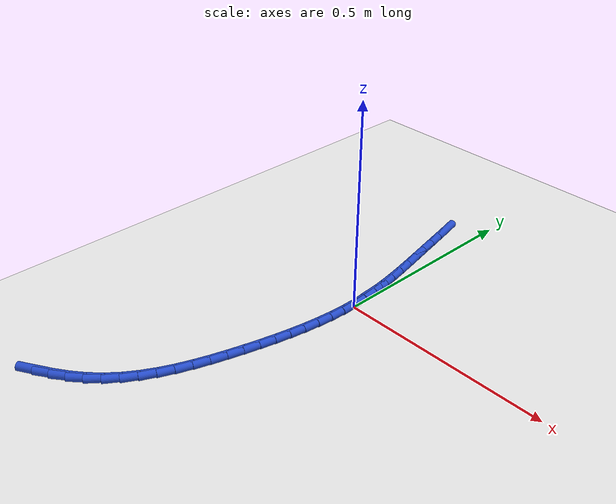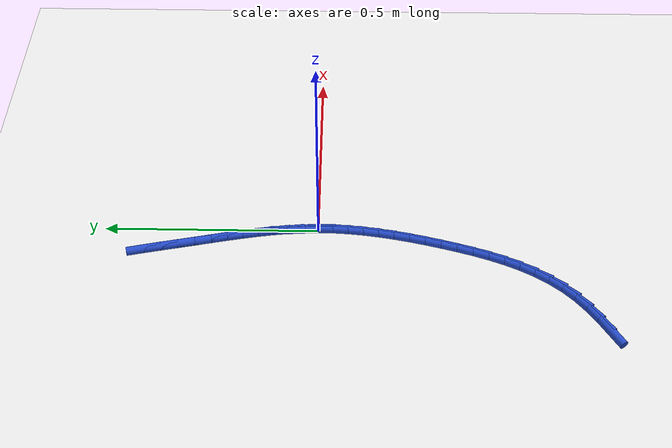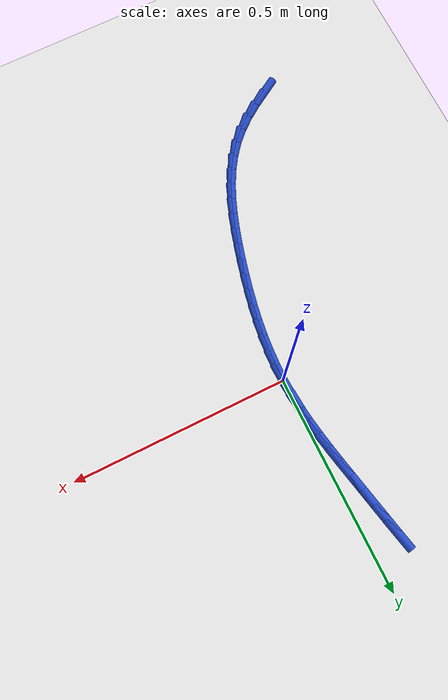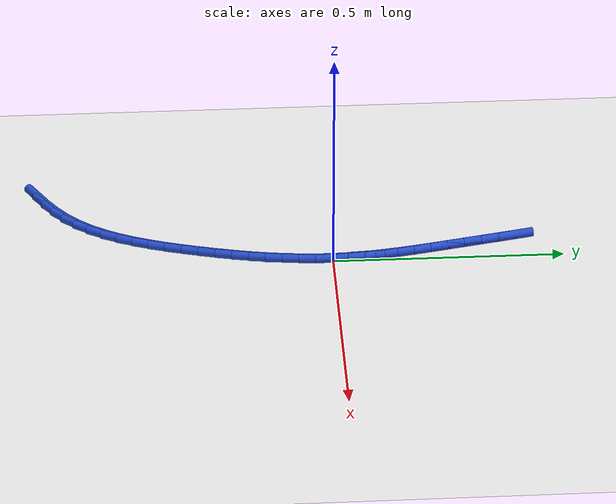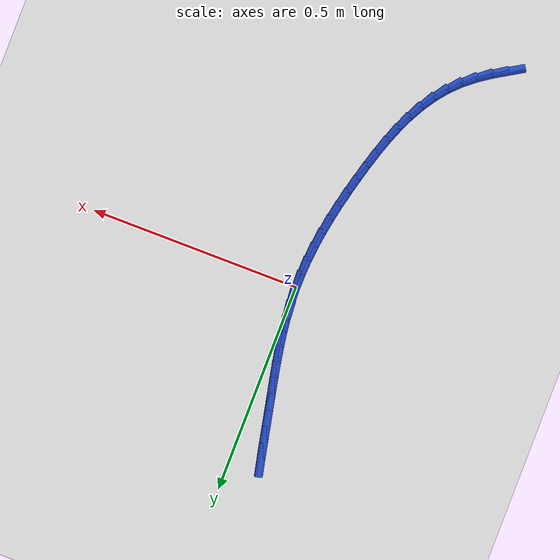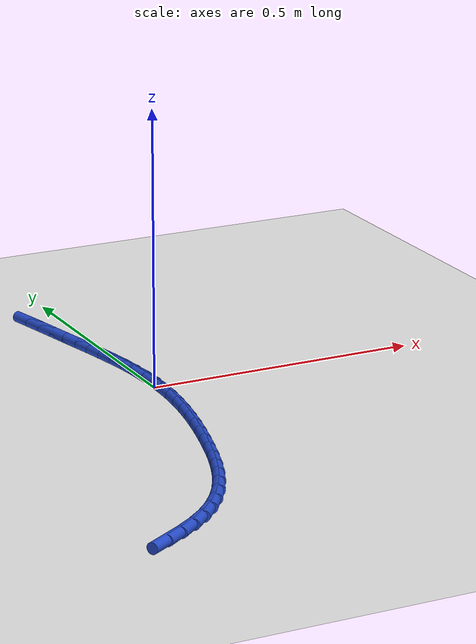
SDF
<sdf version="1.6">
 <world name="default">
  <model name="ground_plane">
   <static>1</static>
   <link name="link">
    <collision name="collision">
     <geometry><plane><normal>0 0 1</normal><size>100 100</size></plane></geometry>
     <surface><friction><ode><mu>100</mu><mu2>50</mu2></ode></friction></surface>
    </collision>
    <visual name="visual">
     <cast_shadows>0</cast_shadows>
     <geometry><plane><normal>0 0 1</normal><size>100 100</size></plane></geometry>
     <material>
      <script><uri>file://media/materials/scripts/gazebo.material</uri><name>Gazebo/WhiteGlow</name></script>
     </material>
    </visual>
   </link>
  </model>
  <model name="line">
   <link name="link_0">
    <pose>-1.0408340855860843e-17 -1.249000902703301e-16 0.01 0 1.57 -1.5328114428045299</pose>
    <collision name="collision">
     <geometry><cylinder><radius>0.01</radius><length>0.08</length></cylinder></geometry>
    </collision>
    <visual name="visual">
     <material>
      <script><name>Gazebo/Blue</name><uri>file://media/materials/scripts/gazebo.material</uri></script>
     </material>
     <geometry><cylinder><radius>0.01</radius><length>0.08</length></cylinder></geometry>
    </visual>
   </link>
   <link name="link_1">
    <pose>-0.0013457381570896605 0.03541121414941874 0.01 0 1.57 -1.4879541787771837</pose>
    <collision name="collision">
     <geometry><cylinder><radius>0.01</radius><length>0.08</length></cylinder></geometry>
    </collision>
    <visual name="visual">
     <material>
      <script><name>Gazebo/Blue</name><uri>file://media/materials/scripts/gazebo.material</uri></script>
     </material>
     <geometry><cylinder><radius>0.01</radius><length>0.08</length></cylinder></geometry>
    </visual>
   </link>
   <link name="link_2">
    <pose>-0.004282115756074854 0.07077554638066325 0.01 0 1.57 -1.449849808840549</pose>
    <collision name="collision">
     <geometry><cylinder><radius>0.01</radius><length>0.08</length></cylinder></geometry>
    </collision>
    <visual name="visual">
     <material>
      <script><name>Gazebo/Blue</name><uri>file://media/materials/scripts/gazebo.material</uri></script>
     </material>
     <geometry><cylinder><radius>0.01</radius><length>0.08</length></cylinder></geometry>
    </visual>
   </link>
   <link name="link_3">
    <pose>-0.008585073144754691 0.106179257582286 0.01 0 1.57 -1.4187127974713785</pose>
    <collision name="collision">
     <geometry><cylinder><radius>0.01</radius><length>0.08</length></cylinder></geometry>
    </collision>
    <visual name="visual">
     <material>
      <script><name>Gazebo/Blue</name><uri>file://media/materials/scripts/gazebo.material</uri></script>
     </material>
     <geometry><cylinder><radius>0.01</radius><length>0.08</length></cylinder></geometry>
    </visual>
   </link>
   <link name="link_4">
    <pose>-0.014030550670928248 0.14170860864283966 0.01 0 1.57 -1.394587187264348</pose>
    <collision name="collision">
     <geometry><cylinder><radius>0.01</radius><length>0.08</length></cylinder></geometry>
    </collision>
    <visual name="visual">
     <material>
      <script><name>Gazebo/Blue</name><uri>file://media/materials/scripts/gazebo.material</uri></script>
     </material>
     <geometry><cylinder><radius>0.01</radius><length>0.08</length></cylinder></geometry>
    </visual>
   </link>
   <link name="link_5">
    <pose>-0.02039448868239461 0.17744986045087677 0.01 0 1.57 -1.3773937905006668</pose>
    <collision name="collision">
     <geometry><cylinder><radius>0.01</radius><length>0.08</length></cylinder></geometry>
    </collision>
    <visual name="visual">
     <material>
      <script><name>Gazebo/Blue</name><uri>file://media/materials/scripts/gazebo.material</uri></script>
     </material>
     <geometry><cylinder><radius>0.01</radius><length>0.08</length></cylinder></geometry>
    </visual>
   </link>
   <link name="link_6">
    <pose>-0.02745282752695288 0.2134892738949501 0.01 0 1.57 -1.3669701784389345</pose>
    <collision name="collision">
     <geometry><cylinder><radius>0.01</radius><length>0.08</length></cylinder></geometry>
    </collision>
    <visual name="visual">
     <material>
      <script><name>Gazebo/Blue</name><uri>file://media/materials/scripts/gazebo.material</uri></script>
     </material>
     <geometry><cylinder><radius>0.01</radius><length>0.08</length></cylinder></geometry>
    </visual>
   </link>
   <link name="link_7">
    <pose>-0.03498150755240213 0.2499131098636122 0.01 0 1.57 -1.3631004106243212</pose>
    <collision name="collision">
     <geometry><cylinder><radius>0.01</radius><length>0.08</length></cylinder></geometry>
    </collision>
    <visual name="visual">
     <material>
      <script><name>Gazebo/Blue</name><uri>file://media/materials/scripts/gazebo.material</uri></script>
     </material>
     <geometry><cylinder><radius>0.01</radius><length>0.08</length></cylinder></geometry>
    </visual>
   </link>
   <link name="link_8">
    <pose>-0.042756469106541455 0.28680762924541564 0.01 0 1.57 -1.3646808211759403</pose>
    <collision name="collision">
     <geometry><cylinder><radius>0.01</radius><length>0.08</length></cylinder></geometry>
    </collision>
    <visual name="visual">
     <material>
      <script><name>Gazebo/Blue</name><uri>file://media/materials/scripts/gazebo.material</uri></script>
     </material>
     <geometry><cylinder><radius>0.01</radius><length>0.08</length></cylinder></geometry>
    </visual>
   </link>
   <link name="link_9">
    <pose>-0.05058263239542309 0.3242381963017498 0.01 0 1.57 -1.3649883020470335</pose>
    <collision name="collision">
     <geometry><cylinder><radius>0.01</radius><length>0.08</length></cylinder></geometry>
    </collision>
    <visual name="visual">
     <material>
      <script><name>Gazebo/Blue</name><uri>file://media/materials/scripts/gazebo.material</uri></script>
     </material>
     <geometry><cylinder><radius>0.01</radius><length>0.08</length></cylinder></geometry>
    </visual>
   </link>
   <link name="link_10">
    <pose>-0.05848865682605078 0.3621088427359484 0.01 0 1.57 -1.3610593747516069</pose>
    <collision name="collision">
     <geometry><cylinder><radius>0.01</radius><length>0.08</length></cylinder></geometry>
    </collision>
    <visual name="visual">
     <material>
      <script><name>Gazebo/Blue</name><uri>file://media/materials/scripts/gazebo.material</uri></script>
     </material>
     <geometry><cylinder><radius>0.01</radius><length>0.08</length></cylinder></geometry>
    </visual>
   </link>
   <link name="link_11">
    <pose>-0.06660734931794815 0.4002485021704603 0.01 0 1.57 -1.3529351256896411</pose>
    <collision name="collision">
     <geometry><cylinder><radius>0.01</radius><length>0.08</length></cylinder></geometry>
    </collision>
    <visual name="visual">
     <material>
      <script><name>Gazebo/Blue</name><uri>file://media/materials/scripts/gazebo.material</uri></script>
     </material>
     <geometry><cylinder><radius>0.01</radius><length>0.08</length></cylinder></geometry>
    </visual>
   </link>
   <link name="link_190">
    <pose>-0.27894560428089493 -0.6409046695862176 0.01 0 1.57 0.544412462934391</pose>
    <collision name="collision">
     <geometry><cylinder><radius>0.01</radius><length>0.08</length></cylinder></geometry>
    </collision>
    <visual name="visual">
     <material>
      <script><name>Gazebo/Blue</name><uri>file://media/materials/scripts/gazebo.material</uri></script>
     </material>
     <geometry><cylinder><radius>0.01</radius><length>0.08</length></cylinder></geometry>
    </visual>
   </link>
   <link name="link_191">
    <pose>-0.2468888010902024 -0.6214960864775122 0.01 0 1.57 0.6059853090540579</pose>
    <collision name="collision">
     <geometry><cylinder><radius>0.01</radius><length>0.08</length></cylinder></geometry>
    </collision>
    <visual name="visual">
     <material>
      <script><name>Gazebo/Blue</name><uri>file://media/materials/scripts/gazebo.material</uri></script>
     </material>
     <geometry><cylinder><radius>0.01</radius><length>0.08</length></cylinder></geometry>
    </visual>
   </link>
   <link name="link_192">
    <pose>-0.2166044832469112 -0.6005102736512534 0.01 0 1.57 0.6869026453174353</pose>
    <collision name="collision">
     <geometry><cylinder><radius>0.01</radius><length>0.08</length></cylinder></geometry>
    </collision>
    <visual name="visual">
     <material>
      <script><name>Gazebo/Blue</name><uri>file://media/materials/scripts/gazebo.material</uri></script>
     </material>
     <geometry><cylinder><radius>0.01</radius><length>0.08</length></cylinder></geometry>
    </visual>
   </link>
   <link name="link_193">
    <pose>-0.1885927156031614 -0.5775366421290735 0.01 0 1.57 0.7876319553768706</pose>
    <collision name="collision">
     <geometry><cylinder><radius>0.01</radius><length>0.08</length></cylinder></geometry>
    </collision>
    <visual name="visual">
     <material>
      <script><name>Gazebo/Blue</name><uri>file://media/materials/scripts/gazebo.material</uri></script>
     </material>
     <geometry><cylinder><radius>0.01</radius><length>0.08</length></cylinder></geometry>
    </visual>
   </link>
   <link name="link_194">
    <pose>-0.16334329384316196 -0.5521741637243784 0.01 0 1.57 0.8944745555905157</pose>
    <collision name="collision">
     <geometry><cylinder><radius>0.01</radius><length>0.08</length></cylinder></geometry>
    </collision>
    <visual name="visual">
     <material>
      <script><name>Gazebo/Blue</name><uri>file://media/materials/scripts/gazebo.material</uri></script>
     </material>
     <geometry><cylinder><radius>0.01</radius><length>0.08</length></cylinder></geometry>
    </visual>
   </link>
   <link name="link_195">
    <pose>-0.14100394019317988 -0.5243402871831536 0.01 0 1.57 0.9898932787150542</pose>
    <collision name="collision">
     <geometry><cylinder><radius>0.01</radius><length>0.08</length></cylinder></geometry>
    </collision>
    <visual name="visual">
     <material>
      <script><name>Gazebo/Blue</name><uri>file://media/materials/scripts/gazebo.material</uri></script>
     </material>
     <geometry><cylinder><radius>0.01</radius><length>0.08</length></cylinder></geometry>
    </visual>
   </link>
   <link name="link_196">
    <pose>-0.12130850199409479 -0.49433778668634276 0.01 0 1.57 1.072119681835671</pose>
    <collision name="collision">
     <geometry><cylinder><radius>0.01</radius><length>0.08</length></cylinder></geometry>
    </collision>
    <visual name="visual">
     <material>
      <script><name>Gazebo/Blue</name><uri>file://media/materials/scripts/gazebo.material</uri></script>
     </material>
     <geometry><cylinder><radius>0.01</radius><length>0.08</length></cylinder></geometry>
    </visual>
   </link>
   <link name="link_197">
    <pose>-0.10396603350499674 -0.46249251924828544 0.01 0 1.57 1.1412954933043984</pose>
    <collision name="collision">
     <geometry><cylinder><radius>0.01</radius><length>0.08</length></cylinder></geometry>
    </collision>
    <visual name="visual">
     <material>
      <script><name>Gazebo/Blue</name><uri>file://media/materials/scripts/gazebo.material</uri></script>
     </material>
     <geometry><cylinder><radius>0.01</radius><length>0.08</length></cylinder></geometry>
    </visual>
   </link>
   <link name="link_198">
    <pose>-0.08868558898497436 -0.42913034188331883 0.01 0 1.57 1.1980963331465218</pose>
    <collision name="collision">
     <geometry><cylinder><radius>0.01</radius><length>0.08</length></cylinder></geometry>
    </collision>
    <visual name="visual">
     <material>
      <script><name>Gazebo/Blue</name><uri>file://media/materials/scripts/gazebo.material</uri></script>
     </material>
     <geometry><cylinder><radius>0.01</radius><length>0.08</length></cylinder></geometry>
    </visual>
   </link>
   <link name="link_199">
    <pose>-0.07517622269311672 -0.3945771116057808 0.01 0 1.57 1.2433876512909634</pose>
    <collision name="collision">
     <geometry><cylinder><radius>0.01</radius><length>0.08</length></cylinder></geometry>
    </collision>
    <visual name="visual">
     <material>
      <script><name>Gazebo/Blue</name><uri>file://media/materials/scripts/gazebo.material</uri></script>
     </material>
     <geometry><cylinder><radius>0.01</radius><length>0.08</length></cylinder></geometry>
    </visual>
   </link>
   <link name="link_200">
    <pose>-0.06314698888851296 -0.3591586854300094 0.01 0 1.57 1.2779950333246446</pose>
    <collision name="collision">
     <geometry><cylinder><radius>0.01</radius><length>0.08</length></cylinder></geometry>
    </collision>
    <visual name="visual">
     <material>
      <script><name>Gazebo/Blue</name><uri>file://media/materials/scripts/gazebo.material</uri></script>
     </material>
     <geometry><cylinder><radius>0.01</radius><length>0.08</length></cylinder></geometry>
    </visual>
   </link>
   <link name="link_201">
    <pose>-0.05230694183025218 -0.32320092037034265 0.01 0 1.57 1.302587568596041</pose>
    <collision name="collision">
     <geometry><cylinder><radius>0.01</radius><length>0.08</length></cylinder></geometry>
    </collision>
    <visual name="visual">
     <material>
      <script><name>Gazebo/Blue</name><uri>file://media/materials/scripts/gazebo.material</uri></script>
     </material>
     <geometry><cylinder><radius>0.01</radius><length>0.08</length></cylinder></geometry>
    </visual>
   </link>
   <link name="link_202">
    <pose>-0.042365834200369025 -0.2870291624937434 0.01 0 1.57 1.3214233123000843</pose>
    <collision name="collision">
     <geometry><cylinder><radius>0.01</radius><length>0.08</length></cylinder></geometry>
    </collision>
    <visual name="visual">
     <material>
      <script><name>Gazebo/Blue</name><uri>file://media/materials/scripts/gazebo.material</uri></script>
     </material>
     <geometry><cylinder><radius>0.01</radius><length>0.08</length></cylinder></geometry>
    </visual>
   </link>
   <link name="link_203">
    <pose>-0.033158817434622824 -0.2508770195239095 0.01 0 1.57 1.34298412416777</pose>
    <collision name="collision">
     <geometry><cylinder><radius>0.01</radius><length>0.08</length></cylinder></geometry>
    </collision>
    <visual name="visual">
     <material>
      <script><name>Gazebo/Blue</name><uri>file://media/materials/scripts/gazebo.material</uri></script>
     </material>
     <geometry><cylinder><radius>0.01</radius><length>0.08</length></cylinder></geometry>
    </visual>
   </link>
   <link name="link_204">
    <pose>-0.02479043602751808 -0.21478101849463122 0.01 0 1.57 1.368480739205622</pose>
    <collision name="collision">
     <geometry><cylinder><radius>0.01</radius><length>0.08</length></cylinder></geometry>
    </collision>
    <visual name="visual">
     <material>
      <script><name>Gazebo/Blue</name><uri>file://media/materials/scripts/gazebo.material</uri></script>
     </material>
     <geometry><cylinder><radius>0.01</radius><length>0.08</length></cylinder></geometry>
    </visual>
   </link>
   <link name="link_205">
    <pose>-0.017400127655548367 -0.1787521595296473 0.01 0 1.57 1.3980521056357944</pose>
    <collision name="collision">
     <geometry><cylinder><radius>0.01</radius><length>0.08</length></cylinder></geometry>
    </collision>
    <visual name="visual">
     <material>
      <script><name>Gazebo/Blue</name><uri>file://media/materials/scripts/gazebo.material</uri></script>
     </material>
     <geometry><cylinder><radius>0.01</radius><length>0.08</length></cylinder></geometry>
    </visual>
   </link>
   <link name="link_206">
    <pose>-0.011127329995207233 -0.14280144275269652 0.01 0 1.57 1.4318308737671162</pose>
    <collision name="collision">
     <geometry><cylinder><radius>0.01</radius><length>0.08</length></cylinder></geometry>
    </collision>
    <visual name="visual">
     <material>
      <script><name>Gazebo/Blue</name><uri>file://media/materials/scripts/gazebo.material</uri></script>
     </material>
     <geometry><cylinder><radius>0.01</radius><length>0.08</length></cylinder></geometry>
    </visual>
   </link>
   <link name="link_207">
    <pose>-0.006111480722988264 -0.1069398682875177 0.01 0 1.57 1.4699284513670121</pose>
    <collision name="collision">
     <geometry><cylinder><radius>0.01</radius><length>0.08</length></cylinder></geometry>
    </collision>
    <visual name="visual">
     <material>
      <script><name>Gazebo/Blue</name><uri>file://media/materials/scripts/gazebo.material</uri></script>
     </material>
     <geometry><cylinder><radius>0.01</radius><length>0.08</length></cylinder></geometry>
    </visual>
   </link>
   <link name="link_208">
    <pose>-0.002492017515385028 -0.07117843625784953 0.01 0 1.57 1.5124161068515198</pose>
    <collision name="collision">
     <geometry><cylinder><radius>0.01</radius><length>0.08</length></cylinder></geometry>
    </collision>
    <visual name="visual">
     <material>
      <script><name>Gazebo/Blue</name><uri>file://media/materials/scripts/gazebo.material</uri></script>
     </material>
     <geometry><cylinder><radius>0.01</radius><length>0.08</length></cylinder></geometry>
    </visual>
   </link>
   <link name="link_209">
    <pose>-0.00040837804889106485 -0.035528146787429965 0.01 0 1.57 1.559302339581582</pose>
    <collision name="collision">
     <geometry><cylinder><radius>0.01</radius><length>0.08</length></cylinder></geometry>
    </collision>
    <visual name="visual">
     <material>
      <script><name>Gazebo/Blue</name><uri>file://media/materials/scripts/gazebo.material</uri></script>
     </material>
     <geometry><cylinder><radius>0.01</radius><length>0.08</length></cylinder></geometry>
    </visual>
   </link>
   <link name="link_210">
    <pose>-3.122502256758253e-17 -3.191891195797325e-16 0.01 0 1.57 -1.5310850240931044</pose>
    <collision name="collision">
     <geometry><cylinder><radius>0.01</radius><length>0.08</length></cylinder></geometry>
    </collision>
    <visual name="visual">
     <material>
      <script><name>Gazebo/Blue</name><uri>file://media/materials/scripts/gazebo.material</uri></script>
     </material>
     <geometry><cylinder><radius>0.01</radius><length>0.08</length></cylinder></geometry>
    </visual>
   </link>
   <link name="link_211">
    <pose>-0.001406321045205411 0.03539500398070318 0.01 0 1.57 -1.475753732860419</pose>
    <collision name="collision">
     <geometry><cylinder><radius>0.01</radius><length>0.08</length></cylinder></geometry>
    </collision>
    <visual name="visual">
     <material>
      <script><name>Gazebo/Blue</name><uri>file://media/materials/scripts/gazebo.material</uri></script>
     </material>
     <geometry><cylinder><radius>0.01</radius><length>0.08</length></cylinder></geometry>
    </visual>
   </link>
   <link name="link_212">
    <pose>-0.004766778861001013 0.07064586503094254 0.01 0 1.57 -1.5034241667043475</pose>
    <collision name="collision">
     <geometry><cylinder><radius>0.01</radius><length>0.08</length></cylinder></geometry>
    </collision>
    <visual name="visual">
     <material>
      <script><name>Gazebo/Blue</name><uri>file://media/materials/scripts/gazebo.material</uri></script>
     </material>
     <geometry><cylinder><radius>0.01</radius><length>0.08</length></cylinder></geometry>
    </visual>
   </link>
  </model>
 </world>
</sdf>
